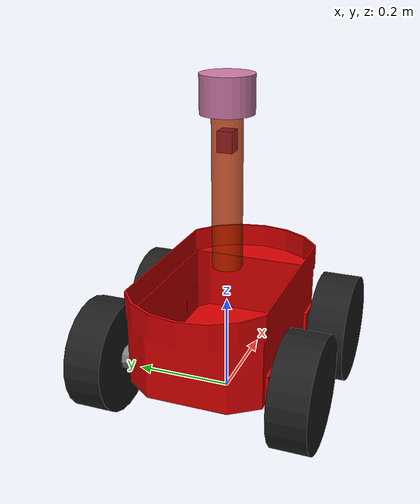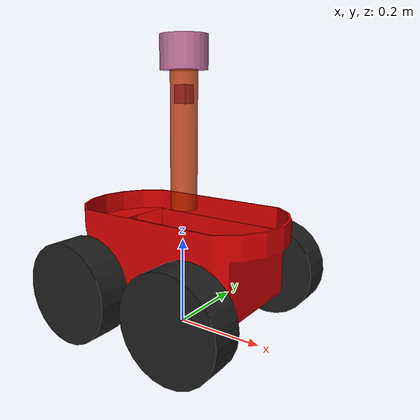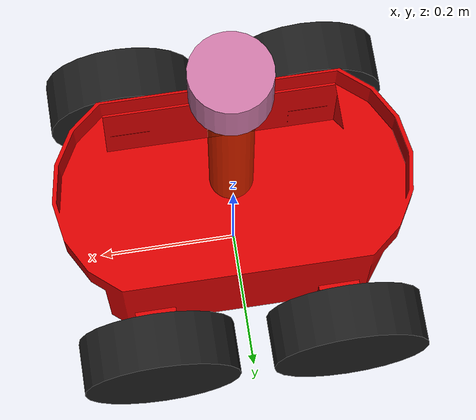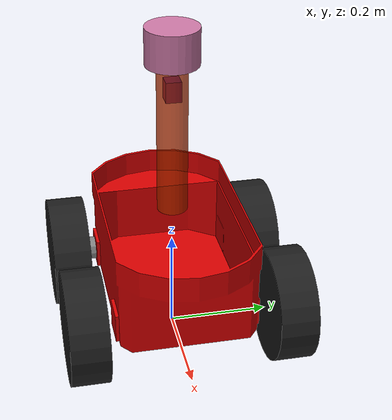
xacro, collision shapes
<?xml version="1.0"?>

<robot xmlns:sensor="http://playerstage.sourceforge.net/gazebo/xmlschema/#sensor"
       xmlns:controller="http://playerstage.sourceforge.net/gazebo/xmlschema/#controller"
       xmlns:interface="http://playerstage.sourceforge.net/gazebo/xmlschema/#interface"
       xmlns:xacro="http://ros.org/wiki/xacro"
name="pioneer3at">

    <xacro:arg name="robot_namespace" default="robot_0"/>
    <xacro:property name="robot_namespace" value="$(arg robot_namespace)" />

    <!-- 惯性矩阵计算 -->
    <xacro:include filename="inertial_matrix.xacro" />
    <xacro:include filename="$(find p2os_urdf)/defs/pioneer3at_body.xacro"/>

    <!-- 给laser link添加3D雷达功能的实现 -->
    <xacro:include filename="sensor_3D_laser.urdf.xacro" />
    <!-- 给sensor_laser link添加2D激光雷达实现 -->
    <xacro:include filename="sensor_2D_laser.urdf.xacro" />

    <xacro:p3at_front suffix="left" reflect="1"/>
    <xacro:p3at_front suffix="right" reflect="-1"/>
    <xacro:p3at_back suffix="left" reflect="1"/>
    <xacro:p3at_back suffix="right" reflect="-1"/>
    <xacro:p3at_gazebo_ext/>

</robot>

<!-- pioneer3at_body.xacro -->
<robot xmlns:sensor="http://playerstage.sourceforge.net/gazebo/xmlschema/#sensor"
       xmlns:controller="http://playerstage.sourceforge.net/gazebo/xmlschema/#controller"
       xmlns:interface="http://playerstage.sourceforge.net/gazebo/xmlschema/#interface"
       xmlns:xacro="http://ros.org/wiki/xacro"
>

<!-- Chassis -->
	<link name="base_link">
		<inertial>
			<mass value="10.0"/>
			<origin xyz="0 0 0.177"/>
			<inertia ixx="0.3338" ixy="0.0" ixz="0.0"
				 iyy="0.4783" iyz="0.0"
				 izz="0.3338"/>
		</inertial>
		<visual>
			<origin xyz="0 0 0.177" rpy="0 0 0"/>
			<geometry name="pioneer_geom">
				<mesh filename="package://p2os_urdf/meshes/p3at_meshes/chassis.stl"/>
			</geometry>
			<material name="ChassisRed">
				<color rgba="0.851 0.0 0.0 1.0"/>
			</material>
		</visual>
		<collision>
			<origin xyz="0 0 0.177" rpy="0 0 0"/>
				<geometry>
					<mesh filename="package://p2os_urdf/meshes/p3at_meshes/chassis.stl"/>
				</geometry>
		</collision>
	</link>
	<gazebo reference="base_link">
		<material value="Gazebo/Red"/>
	</gazebo>

<!-- Top -->
	<link name="top_plate">
		<inertial>
			<mass value="0.1"/>
			<origin xyz="-0.025 0 -0.223"/>
			<inertia ixx="1.0" ixy="0.0" ixz="0.0"
				 iyy="1.0" iyz="0.0"
 				izz="1.0"/>
		</inertial>
		<visual>
			<origin xyz="0 0 0" rpy="0 0 0"/>
			<geometry name="pioneer_geom">
				<mesh filename="package://p2os_urdf/meshes/p3at_meshes/top.stl"/>
			</geometry>
			<material name="TopBlack">
					<color rgba="0.038 0.038 0.038 1.0"/>
			</material>
		</visual>
		<collision>
			<origin xyz="0 0 0" rpy="0 0 0"/>
			<geometry>
				<box size="0 0 0"/>
			</geometry>
		</collision>
	</link>
	<gazebo reference="top_plate">
		<material value="Gazebo/Black"/>
	</gazebo>

	<joint name="base_top_joint" type="fixed">
		<origin xyz="0.003 0 0.274" rpy="0 0 0"/>
		<parent link="base_link"/>
		<child link="top_plate"/>
	</joint>

<!-- 3D lidar -->
    <!-- 雷达支架 -->
    <xacro:property name="support_length" value="0.30" /> <!-- 支架长度 -->
    <xacro:property name="support_radius" value="0.03" /> <!-- 支架半径 -->
    <xacro:property name="support_x" value="0.0" /> <!-- 支架安装的x坐标 -->
    <xacro:property name="support_y" value="0.0" /> <!-- 支架安装的y坐标 -->
    <xacro:property name="support_z" value="${support_length / 2}" /> <!-- 支架安装的z坐标:底盘高度 / 2 + 支架高度 / 2  -->
    <xacro:property name="support_m" value="0.02" /> <!-- 支架质量 -->

    <link name="support">
        <visual>
            <geometry>
                <cylinder radius="${support_radius}" length="${support_length}" />
            </geometry>
            <origin xyz="0.0 0.0 0.0" rpy="0.0 0.0 0.0" />
            <material name="red">
                <color rgba="0.8 0.2 0.0 0.8" />
            </material>
        </visual>

        <collision>
            <geometry>
                <cylinder radius="${support_radius}" length="${support_length}" />
            </geometry>
            <origin xyz="0.0 0.0 0.0" rpy="0.0 0.0 0.0" />
        </collision>

        <xacro:cylinder_inertial_matrix m="${support_m}" r="${support_radius}" h="${support_length}" />

    </link>

    <joint name="support2top_plate" type="fixed">
        <parent link="top_plate" />
        <child link="support" />
        <origin xyz="${support_x} ${support_y} ${support_z}" />
    </joint>

    <gazebo reference="support">
        <material>Gazebo/White</material>
    </gazebo>

    <!--2D Laser Scan-->
    <xacro:macro name="default_inertial" params="mass">
        <inertial>
          <mass value="${mass}"/>
          <inertia ixx="1.0" ixy="0.0" ixz="0.0" iyy="1.0" iyz="0.0" izz="1.0"/>
        </inertial>
      </xacro:macro>

    <material name="blue">
        <color rgba="0 0 0.8 1"/>
    </material>

    <xacro:property name="laser_size_x" value="0.03"/>
    <xacro:property name="laser_size_y" value="0.03"/>
    <xacro:property name="laser_size_z" value="0.04"/>
    <xacro:property name="laser_origin_x" value="0"/>
    <xacro:property name="laser_origin_y" value="0"/>
    <xacro:property name="laser_origin_z" value="${support_length / 3}"/>

    <link name="sensor_laser">
        <visual>
        <geometry>
            <box size="${laser_size_x} ${laser_size_y} ${laser_size_z}"/>
        </geometry>
        <material name="blue"/>
        </visual>
        <collision>
            <geometry>
                <box size="${laser_size_x} ${laser_size_y} ${laser_size_z}"/>
            </geometry>
        </collision>
        <xacro:default_inertial mass="0.02"/>
    </link>

    <joint name="sensor_laser_joint" type="fixed">
        <origin xyz="${laser_origin_x} ${laser_origin_y} ${laser_origin_z}" rpy="0 0 0" />
        <parent link="support"/>
        <child link="sensor_laser" />
    </joint>

<!-- Front + Back Sonar -->
	<link name="front_sonar">
		<inertial>
			<mass value="0.1"/>
			<origin xyz="0 0 0"/>
			<inertia ixx="1.0" ixy="0.0" ixz="0.0"
				 iyy="1.0" iyz="0.0" izz="1.0"/>
		</inertial>
		<visual>
			<origin xyz="0 0 0" rpy="0 0 0"/>
			<geometry name="pioneer_geom">
				<mesh filename="package://p2os_urdf/meshes/p3at_meshes/front_sonar.stl"/>
			</geometry>
			<material name="SonarYellow">
				<color rgba="0.715 0.583 0.210 1.0"/>
			</material>
		</visual>
		<collision>
			<origin xyz="0 0 0" rpy="0 0 0"/>
			<geometry>
				<box size="0 0 0"/>
			</geometry>
		</collision>
	</link>
	<gazebo reference="front_sonar">
		<material value="Gazebo/Yellow"/>
	</gazebo>

	<joint name="base_front_joint" type="fixed">
		<origin xyz="0.193 0 0.25" rpy="0 0 0"/>
		<parent link="base_link"/>
		<child link="front_sonar"/>
	</joint>

	<link name="back_sonar">
		<inertial>
			<mass value="0.1"/>
			<origin xyz="0 0 0"/>
			<inertia ixx="1.0" ixy="0.0" ixz="0.0"
				 iyy="1.0" iyz="0.0" izz="1.0"/>
		</inertial>
		<visual>
			<origin xyz="0 0 0" rpy="0 0 0"/>
			<geometry name="pioneer_geom">
				<mesh filename="package://p2os_urdf/meshes/p3at_meshes/back_sonar.stl"/>
			</geometry>
			<material name="SonarYellow">
				<color rgba="0.715 0.583 0.210 1.0"/>
			</material>
		</visual>
		<collision>
			<origin xyz="0 0 0" rpy="0 0 0"/>
			<geometry>
				<box size="0 0 0"/>
			</geometry>
		</collision>
	</link>
	<gazebo reference="back_sonar">
		<material value="Gazebo/Yellow"/>
	</gazebo>

	<joint name="base_back_joint" type="fixed">
		<origin xyz="-0.187 0 0.247" rpy="0 0 0"/>
		<parent link="base_link"/>
		<child link="back_sonar"/>
	</joint>

<!-- Front Axles + Wheels + Hubcaps -->
<xacro:macro name="p3at_front" params="suffix reflect">
	<link name="p3at_front_${suffix}_axle">
		<inertial>
			<mass value="0.1"/>
			<origin xyz="0 0 0"/>
			<inertia ixx="1.0" ixy="0.0" ixz="0.0"
				 iyy="1.0" iyz="0.0" izz="1.0"/>
  	 	</inertial>
	<visual>
		<origin xyz="0 0 0" rpy="0 0 0"/>
		<geometry name="pioneer_geom">
			<mesh filename="package://p2os_urdf/meshes/p3at_meshes/axle.stl"/>
		</geometry>
		<material name="AxleGrey">
			<color rgba="0.5 0.5 0.5 1"/>
		</material>
	</visual>
	<collision>
		<origin xyz="0 0 0" rpy="0 0 0"/>
		<geometry>
			<box size="0 0 0"/>
		</geometry>
	</collision>
	</link>
	<gazebo reference="p3at_front_${suffix}_axle">
		<material value="Gazebo/Grey"/>
	</gazebo>

	<joint name="base_front_${suffix}_axle_joint" type="fixed">
		<origin xyz="0.135 ${reflect*0.156} 0.111" rpy="0 0 0"/>
		<parent link="base_link"/>
		<child link="p3at_front_${suffix}_axle"/>
	</joint>

	<link name="p3at_front_${suffix}_hub">
		<inertial>
			<mass value="0.1"/>
			<origin xyz="0 0 0"/>
			<inertia ixx="1.0" ixy="0.0" ixz="0.0"
				 iyy="1.0" iyz="0.0" izz="1.0"/>
  	 	</inertial>
	<visual>
		<origin xyz="0 0 0" rpy="0 0 0"/>
		<geometry name="pioneer_geom">
			<mesh filename="package://p2os_urdf/meshes/p3at_meshes/${suffix}_hubcap.stl"/>
		</geometry>
		<material name="HubcapYellow">
			<color rgba="1.0 0.811 0.151 1.0"/>
		</material>
	</visual>
	<collision>
		<origin xyz="0 0 0" rpy="0 0 0"/>
		<geometry>
			<box size="0 0 0"/>
		</geometry>
	</collision>
	</link>
	<gazebo reference="p3at_front_${suffix}_hub">
		<material value="Gazebo/Yellow"/>
	</gazebo>

	<joint name="base_front_${suffix}_hub_joint" type="fixed">
		<origin xyz="0 ${reflect*0.041} 0" rpy="0 0 0"/>
		<parent link="p3at_front_${suffix}_axle"/>
		<child link="p3at_front_${suffix}_hub"/>
	</joint>

	<link name="p3at_front_${suffix}_wheel">
		<inertial>
			<mass value="0.5"/>
			<origin xyz="0 0 0"/>
			<inertia ixx="0.012411765597" ixy="0" ixz="0"
         iyy="0.015218160428" iyz="0" izz="0.011763977943"/>
      </inertial>
	<visual>
		<origin xyz="0 0 0" rpy="0 0 0"/>
		<geometry name="pioneer_geom">
			<mesh filename="package://p2os_urdf/meshes/p3at_meshes/wheel.stl"/>
		</geometry>
		<material name="WheelBlack">
			<color rgba="0.117 0.117 0.117 1"/>
		</material>
	</visual>
	<collision>
		<origin xyz="0 0 0" rpy="${-3.1415927/2} 0 0"/>
		<geometry>
	    <!--mesh filename="package://p2os_urdf/meshes/p3at_meshes/wheel.stl"/-->
	    <cylinder radius="0.111" length="0.075"/>
		</geometry>
	</collision>
	</link>
	<gazebo reference="p3at_front_${suffix}_wheel">
		<material value="Gazebo/Black"/>
	</gazebo>

	<joint name="p3at_front_${suffix}_wheel_joint" type="continuous">
  	<axis xyz="0 1 0"/>
    <anchor xyz="0 0 0"/>
    <limit effort="100" velocity="100" />
    <joint_properties damping="0.7"/>
		<origin xyz="0 0 0" rpy="0 0 0"/>
		<parent link="p3at_front_${suffix}_hub"/>
		<child link="p3at_front_${suffix}_wheel"/>
	</joint>
</xacro:macro>

<!-- Back Axles + Wheels + Hubcaps -->
<xacro:macro name="p3at_back" params="suffix reflect">
	<link name="p3at_back_${suffix}_axle">
		<inertial>
			<mass value="0.1"/>
			<origin xyz="0 0 0"/>
			<inertia ixx="1.0" ixy="0.0" ixz="0.0"
				 iyy="1.0" iyz="0.0" izz="1.0"/>
  	 	</inertial>
	<visual>
		<origin xyz="0 0 0" rpy="0 0 0"/>
		<geometry name="pioneer_geom">
			<mesh filename="package://p2os_urdf/meshes/p3at_meshes/axle.stl"/>
		</geometry>
		<material name="AxleGrey">
			<color rgba="0.5 0.5 0.5 1"/>
		</material>
	</visual>
	<collision>
		<origin xyz="0 0 0" rpy="0 0 0"/>
		<geometry>
			<mesh filename="package://p2os_urdf/meshes/p3at_meshes/axle.stl"/>
		</geometry>
	</collision>
	</link>
	<gazebo reference="p3at_back_${suffix}_axle">
		<material value="Gazebo/Grey"/>
	</gazebo>

	<joint name="bp3at_back_${suffix}_axle_joint" type="fixed">
		<origin xyz="-0.134 ${reflect*0.156} 0.111" rpy="0 0 0"/>
		<parent link="base_link"/>
		<child link="p3at_back_${suffix}_axle"/>
	</joint>

	<link name="p3at_back_${suffix}_hub">
		<inertial>
			<mass value="0.1"/>
			<origin xyz="0 0 0"/>
			<inertia ixx="1.0" ixy="0.0" ixz="0.0"
				 iyy="1.0" iyz="0.0" izz="1.0"/>
  	 	</inertial>
	<visual>
		<origin xyz="0 0 0" rpy="0 0 0"/>
		<geometry name="pioneer_geom">
			<mesh filename="package://p2os_urdf/meshes/p3at_meshes/${suffix}_hubcap.stl"/>
		</geometry>
		<material name="HubcapYellow"/>
	</visual>
	<collision>
		<origin xyz="0 0 0" rpy="0 0 0"/>
		<geometry>
			<mesh filename="package://p2os_urdf/meshes/p3at_meshes/${suffix}_hubcap.stl"/>
		</geometry>
	</collision>
	</link>
	<gazebo reference="p3at_back_${suffix}_hub">
		<material value="Gazebo/Yellow"/>
	</gazebo>

	<joint name="p3at_back_${suffix}_hub_joint" type="fixed">
		<origin xyz="-0 ${reflect*0.041} 0" rpy="0 0 0"/>
		<parent link="p3at_back_${suffix}_axle"/>
		<child link="p3at_back_${suffix}_hub"/>
	</joint>

	<link name="p3at_back_${suffix}_wheel">
		<inertial>
			<mass value="0.5"/>
			<origin xyz="0 0 0"/>
			<inertia ixx="0.012411765597" ixy="0" ixz="0"
         iyy="0.015218160428" iyz="0" izz="0.011763977943"/>
      </inertial>
	<visual>
		<origin xyz="0 0 0" rpy="0 0 0"/>
		<geometry name="pioneer_geom">
			<mesh filename="package://p2os_urdf/meshes/p3at_meshes/wheel.stl"/>
		</geometry>
		<material name="WheelBlack"/>
	</visual>
	<collision>
		<origin xyz="0 0 0" rpy="${-3.1415927/2} 0 0"/>
		<geometry>
	    <!--mesh filename="package://p2os_urdf/meshes/p3at_meshes/wheel.stl"/-->
	    <cylinder radius="0.111" length="0.075"/>
		</geometry>
	</collision>
	</link>
	<gazebo reference="p3at_back_${suffix}_wheel">
		<material value="Gazebo/Black"/>
	</gazebo>

	<joint name="p3at_back_${suffix}_wheel_joint" type="continuous">
	  <axis xyz="0 1 0"/>
    <anchor xyz="0 0 0"/>
    <limit effort="100" velocity="100" />
    <joint_properties damping="0.7"/>
		<origin xyz="0 0 0" rpy="0 0 0"/>
		<parent link="p3at_back_${suffix}_hub"/>
		<child link="p3at_back_${suffix}_wheel"/>
	</joint>

  <gazebo reference="p3at_back_${suffix}_wheel">
    <kp>1000000.0</kp> <!-- kp and kd for rubber -->
    <kd>100.0</kd>
    <mu1>10.0</mu1>
    <mu2>1.0</mu2>
    <fdir1>0 1 0</fdir1> <!-- is this correct? -->
    <maxVel>1.0</maxVel>
    <minDepth>0.00</minDepth>
  </gazebo>

  <gazebo reference="p3at_front_${suffix}_wheel">
    <kp>1000000.0</kp> <!-- kp and kd for rubber -->
    <kd>100.0</kd>
    <mu1>10.0</mu1>
    <mu2>1.0</mu2>
    <fdir1>0 1 0</fdir1> <!-- is this correct? -->
    <maxVel>1.0</maxVel>
    <minDepth>0.00</minDepth>
  </gazebo>

</xacro:macro>

<xacro:macro name="p3at_gazebo_ext">

<gazebo>
  <plugin name="skid_steer_drive_controller" filename="libgazebo_ros_skid_steer_drive.so">
    <updateRate>100.0</updateRate>
    <robotNamespace>${robot_namespace}</robotNamespace>
    <leftFrontJoint>p3at_front_left_wheel_joint</leftFrontJoint>
    <rightFrontJoint>p3at_front_right_wheel_joint</rightFrontJoint>
    <leftRearJoint>p3at_back_left_wheel_joint</leftRearJoint>
    <rightRearJoint>p3at_back_right_wheel_joint</rightRearJoint>
    <wheelSeparation>0.4</wheelSeparation>
    <wheelDiameter>0.215</wheelDiameter>
    <robotBaseFrame>${robot_namespace}/base_link</robotBaseFrame>
    <torque>200</torque>
    <topicName>cmd_vel</topicName>
    <odometryFrame>odom</odometryFrame>
    <odometryTopic>odom</odometryTopic> <!-- 里程计话题 -->
    <publishTf>1</publishTf>  <!--这两个参数决定了gazebo是否发布odom坐标 -->
    <broadcastTF>1</broadcastTF>
  </plugin>
</gazebo>

</xacro:macro>

</robot>

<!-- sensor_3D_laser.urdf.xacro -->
<robot name="my_sensors" xmlns:xacro="http://wiki.ros.org/xacro">

    <xacro:include filename="VLP-16.urdf.xacro"/>
    <xacro:VLP-16 parent="support" name="velodyne" topic="velodyne_points" hz="5" samples="350" min_range="0.1" organize_cloud="true">
      <origin xyz="0 0 0.15" rpy="0 0 0" />
    </xacro:VLP-16>

</robot>

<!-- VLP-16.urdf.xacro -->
<robot xmlns:xacro="http://www.ros.org/wiki/xacro" name="VLP-16">
  <xacro:property name="M_PI" value="3.1415926535897931" />
  <xacro:macro name="VLP-16" params="*origin parent:=base_link name:=velodyne topic:=/velodyne_points organize_cloud:=false hz:=10 lasers:=16 samples:=1875 collision_range:=0.3 min_range:=0.9 max_range:=130.0 noise:=0.008 min_angle:=-${M_PI} max_angle:=${M_PI} gpu:=false">

    <joint name="${name}_base_mount_joint" type="fixed">
      <xacro:insert_block name="origin" />
      <parent link="${parent}"/>
      <child link="${name}_base_link"/>
    </joint>

    <link name="${name}_base_link">
      <inertial>
        <mass value="0.83"/>
        <origin xyz="0 0 0.03585"/>
        <inertia ixx="${(0.83 * (3.0*0.0516*0.0516 + 0.0717*0.0717)) / 12.0}" ixy="0" ixz="0"
          iyy="${(0.83 * (3.0*0.0516*0.0516 + 0.0717*0.0717)) / 12.0}" iyz="0"
          izz="${0.5 * 0.83 * (0.0516*0.0516)}"/>
      </inertial>
      <visual>
        <geometry>
          <mesh filename="package://velodyne_description/meshes/VLP16_base_1.dae" />
        </geometry>
      </visual>
      <visual>
        <geometry>
          <mesh filename="package://velodyne_description/meshes/VLP16_base_2.dae" />
        </geometry>
      </visual>
      <collision>
        <origin rpy="0 0 0" xyz="0 0 0.03585"/>
        <geometry>
          <cylinder radius="0.0516" length="0.0717"/>
        </geometry>
      </collision>
    </link>

    <joint name="${name}_base_scan_joint" type="fixed" >
      <origin xyz="0 0 0.0377" rpy="0 0 0" />
      <parent link="${name}_base_link" />
      <child link="${name}"/>
    </joint>

    <link name="${name}">
      <inertial>
        <mass value="0.01"/>
        <origin xyz="0 0 0"/>
        <inertia ixx="1e-7" ixy="0" ixz="0" iyy="1e-7" iyz="0" izz="1e-7"/>
      </inertial>
      <visual>
        <origin xyz="0 0 -0.0377" />
        <geometry>
          <mesh filename="package://velodyne_description/meshes/VLP16_scan.dae" />
        </geometry>
      </visual>
    </link>

    <!-- Gazebo requires the velodyne_gazebo_plugins package -->
    <gazebo reference="${name}">
      <xacro:if value="${gpu}">
        <sensor type="gpu_ray" name="${name}-VLP16">
          <pose>0 0 0 0 0 0</pose>
          <visualize>false</visualize>
          <update_rate>${hz}</update_rate>
          <ray>
            <scan>
              <horizontal>
                <samples>${samples}</samples>
                <resolution>1</resolution>
                <min_angle>${min_angle}</min_angle>
                <max_angle>${max_angle}</max_angle>
              </horizontal>
              <vertical>
                <samples>${lasers}</samples>
                <resolution>1</resolution>
                <min_angle>-${15.0*M_PI/180.0}</min_angle>
                <max_angle> ${15.0*M_PI/180.0}</max_angle>
              </vertical>
            </scan>
            <range>
              <min>${collision_range}</min>
              <max>${max_range+1}</max>
              <resolution>0.001</resolution>
            </range>
            <noise>
              <type>gaussian</type>
              <mean>0.0</mean>
              <stddev>0.0</stddev>
            </noise>
          </ray>
          <plugin name="gazebo_ros_laser_controller" filename="libgazebo_ros_velodyne_gpu_laser.so">
            <topicName>${topic}</topicName>
            <frameName>${name}</frameName>
            <organize_cloud>${organize_cloud}</organize_cloud>
            <min_range>${min_range}</min_range>
            <max_range>${max_range}</max_range>
            <gaussianNoise>${noise}</gaussianNoise>
          </plugin>
        </sensor>
      </xacro:if>
      <xacro:unless value="${gpu}">
        <sensor type="ray" name="${name}-VLP16">
          <pose>0 0 0 0 0 0</pose>
          <visualize>false</visualize>
          <update_rate>${hz}</update_rate>
          <ray>
            <scan>
              <horizontal>
                <samples>${samples}</samples>
                <resolution>1</resolution>
                <min_angle>${min_angle}</min_angle>
                <max_angle>${max_angle}</max_angle>
              </horizontal>
              <vertical>
                <samples>${lasers}</samples>
                <resolution>1</resolution>
                <min_angle>-${15.0*M_PI/180.0}</min_angle>
                <max_angle> ${15.0*M_PI/180.0}</max_angle>
              </vertical>
            </scan>
            <range>
              <min>${collision_range}</min>
              <max>${max_range+1}</max>
              <resolution>0.001</resolution>
            </range>
            <noise>
              <type>gaussian</type>
              <mean>0.0</mean>
              <stddev>0.0</stddev>
            </noise>
          </ray>
          <plugin name="gazebo_ros_laser_controller" filename="libgazebo_ros_velodyne_laser.so">
            <topicName>${topic}</topicName>
            <frameName>${name}</frameName>
            <organize_cloud>${organize_cloud}</organize_cloud>
            <min_range>${min_range}</min_range>
            <max_range>${max_range}</max_range>
            <gaussianNoise>${noise}</gaussianNoise>
          </plugin>
        </sensor>
      </xacro:unless>
    </gazebo>

  </xacro:macro>
</robot>
